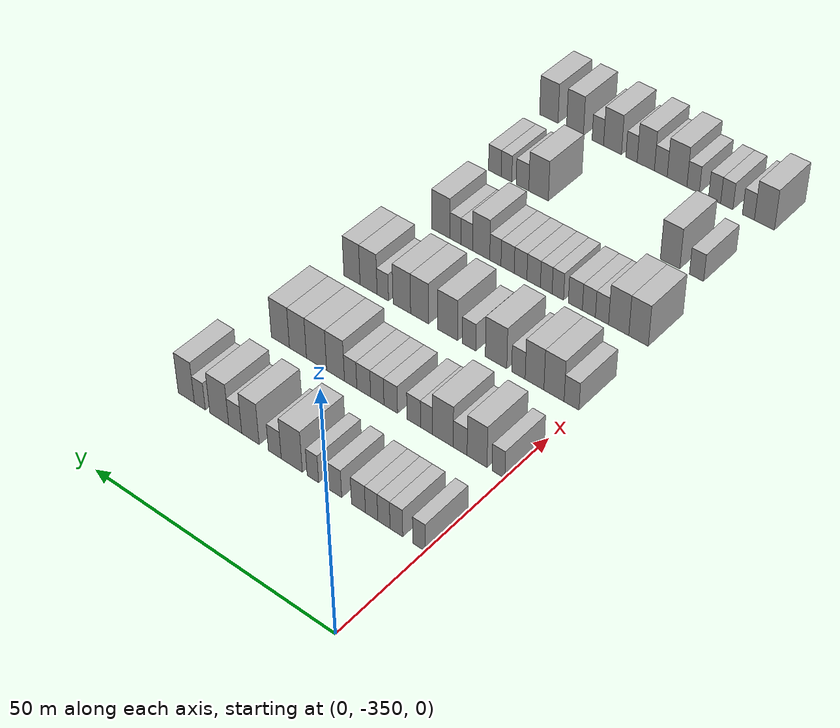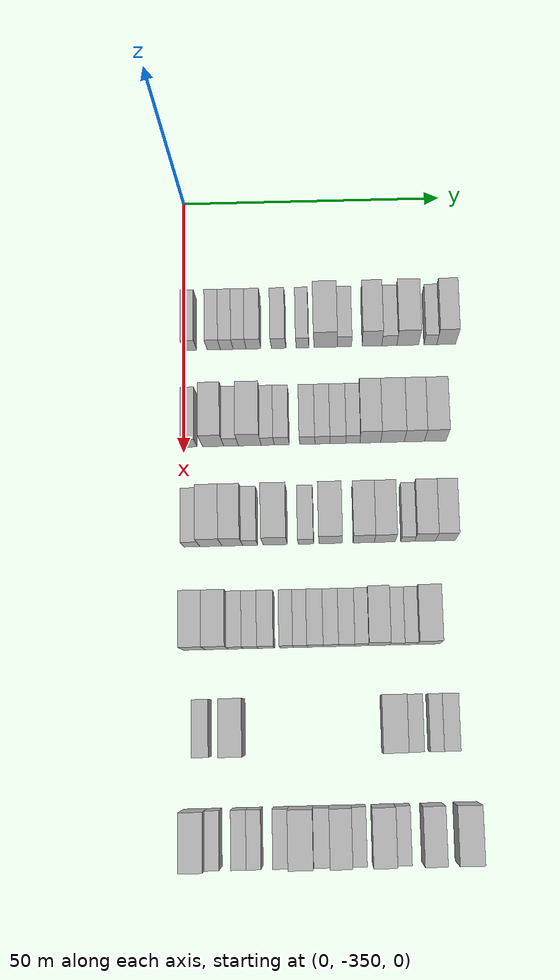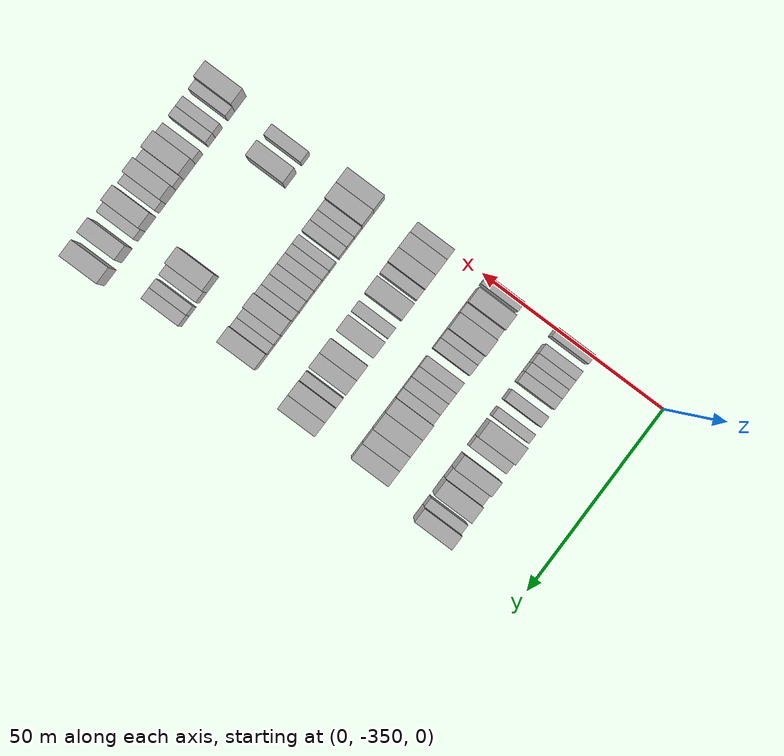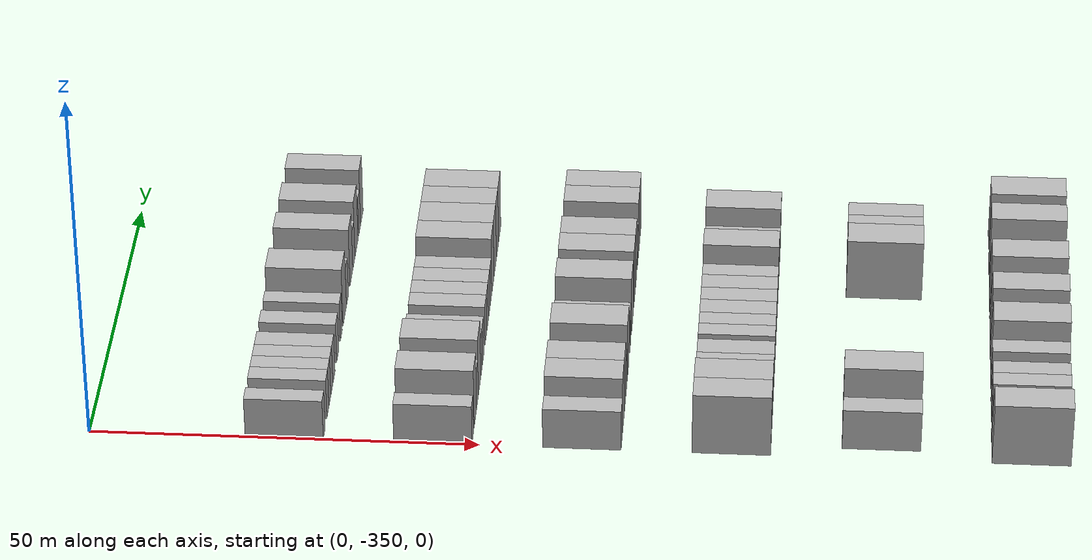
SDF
<sdf version="1.6">
 <world name="default">
  <model name="building_1">
   <static>1</static>
   <pose>25.0000 -348.7700 0 0.000000 0.000000 0.000000</pose>
   <link name="link">
    <pose>0 0 3.00 0 0 0</pose>
    <collision name="collision"><geometry><box><size>10.0000 2.4600 6.0000</size></box></geometry></collision>
    <visual name="visual">
     <cast_shadows>0</cast_shadows>
     <geometry><box><size>10.0000 2.4600 6.0000</size></box></geometry>
     <material>
      <script>
       <uri>model://HANNAS_wall/materials/scripts</uri>
       <uri>model://HANNAS_wall/materials/textures</uri>
       <name>vrc/HANNAS_wall</name>
      </script>
     </material>
    </visual>
   </link>
  </model>
  <model name="building_2">
   <static>1</static>
   <pose>25.0000 -344.2790 0 0.000000 0.000000 0.000000</pose>
   <link name="link">
    <pose>0 0 3.00 0 0 0</pose>
    <collision name="collision"><geometry><box><size>10.0000 2.5220 6.0000</size></box></geometry></collision>
    <visual name="visual">
     <cast_shadows>0</cast_shadows>
     <geometry><box><size>10.0000 2.5220 6.0000</size></box></geometry>
     <material>
      <script>
       <uri>model://HANNAS_wall/materials/scripts</uri>
       <uri>model://HANNAS_wall/materials/textures</uri>
       <name>vrc/HANNAS_wall</name>
      </script>
     </material>
    </visual>
   </link>
  </model>
  <model name="building_3">
   <static>1</static>
   <pose>25.0000 -341.7935 0 0.000000 0.000000 0.000000</pose>
   <link name="link">
    <pose>0 0 3.00 0 0 0</pose>
    <collision name="collision"><geometry><box><size>10.0000 2.4490 6.0000</size></box></geometry></collision>
    <visual name="visual">
     <cast_shadows>0</cast_shadows>
     <geometry><box><size>10.0000 2.4490 6.0000</size></box></geometry>
     <material>
      <script>
       <uri>model://HANNAS_wall/materials/scripts</uri>
       <uri>model://HANNAS_wall/materials/textures</uri>
       <name>vrc/HANNAS_wall</name>
      </script>
     </material>
    </visual>
   </link>
  </model>
  <model name="building_4">
   <static>1</static>
   <pose>25.0000 -339.3221 0 0.000000 0.000000 0.000000</pose>
   <link name="link">
    <pose>0 0 3.00 0 0 0</pose>
    <collision name="collision"><geometry><box><size>10.0000 2.4938 6.0000</size></box></geometry></collision>
    <visual name="visual">
     <cast_shadows>0</cast_shadows>
     <geometry><box><size>10.0000 2.4938 6.0000</size></box></geometry>
     <material>
      <script>
       <uri>model://HANNAS_wall/materials/scripts</uri>
       <uri>model://HANNAS_wall/materials/textures</uri>
       <name>vrc/HANNAS_wall</name>
      </script>
     </material>
    </visual>
   </link>
  </model>
  <model name="building_5">
   <static>1</static>
   <pose>25.0000 -336.6558 0 0.000000 0.000000 0.000000</pose>
   <link name="link">
    <pose>0 0 3.00 0 0 0</pose>
    <collision name="collision"><geometry><box><size>10.0000 2.8388 6.0000</size></box></geometry></collision>
    <visual name="visual">
     <cast_shadows>0</cast_shadows>
     <geometry><box><size>10.0000 2.8388 6.0000</size></box></geometry>
     <material>
      <script>
       <uri>model://HANNAS_wall/materials/scripts</uri>
       <uri>model://HANNAS_wall/materials/textures</uri>
       <name>vrc/HANNAS_wall</name>
      </script>
     </material>
    </visual>
   </link>
  </model>
  <model name="building_6">
   <static>1</static>
   <pose>25.0000 -331.8536 0 0.000000 0.000000 0.000000</pose>
   <link name="link">
    <pose>0 0 3.00 0 0 0</pose>
    <collision name="collision"><geometry><box><size>10.0000 2.7655 6.0000</size></box></geometry></collision>
    <visual name="visual">
     <cast_shadows>0</cast_shadows>
     <geometry><box><size>10.0000 2.7655 6.0000</size></box></geometry>
     <material>
      <script>
       <uri>model://HANNAS_wall/materials/scripts</uri>
       <uri>model://HANNAS_wall/materials/textures</uri>
       <name>vrc/HANNAS_wall</name>
      </script>
     </material>
    </visual>
   </link>
  </model>
  <model name="building_7">
   <static>1</static>
   <pose>25.0000 -327.2691 0 0.000000 0.000000 0.000000</pose>
   <link name="link">
    <pose>0 0 3.00 0 0 0</pose>
    <collision name="collision"><geometry><box><size>10.0000 2.4035 6.0000</size></box></geometry></collision>
    <visual name="visual">
     <cast_shadows>0</cast_shadows>
     <geometry><box><size>10.0000 2.4035 6.0000</size></box></geometry>
     <material>
      <script>
       <uri>model://HANNAS_wall/materials/scripts</uri>
       <uri>model://HANNAS_wall/materials/textures</uri>
       <name>vrc/HANNAS_wall</name>
      </script>
     </material>
    </visual>
   </link>
  </model>
  <model name="building_8">
   <static>1</static>
   <pose>25.0000 -322.8281 0 0.000000 0.000000 0.000000</pose>
   <link name="link">
    <pose>0 0 4.50 0 0 0</pose>
    <collision name="collision"><geometry><box><size>10.0000 4.4784 9.0000</size></box></geometry></collision>
    <visual name="visual">
     <cast_shadows>0</cast_shadows>
     <geometry><box><size>10.0000 4.4784 9.0000</size></box></geometry>
     <material>
      <script>
       <uri>model://HANNAS_wall/materials/scripts</uri>
       <uri>model://HANNAS_wall/materials/textures</uri>
       <name>vrc/HANNAS_wall</name>
      </script>
     </material>
    </visual>
   </link>
  </model>
  <model name="building_9">
   <static>1</static>
   <pose>25.0000 -319.2223 0 0.000000 0.000000 0.000000</pose>
   <link name="link">
    <pose>0 0 3.00 0 0 0</pose>
    <collision name="collision"><geometry><box><size>10.0000 2.7331 6.0000</size></box></geometry></collision>
    <visual name="visual">
     <cast_shadows>0</cast_shadows>
     <geometry><box><size>10.0000 2.7331 6.0000</size></box></geometry>
     <material>
      <script>
       <uri>model://HANNAS_wall/materials/scripts</uri>
       <uri>model://HANNAS_wall/materials/textures</uri>
       <name>vrc/HANNAS_wall</name>
      </script>
     </material>
    </visual>
   </link>
  </model>
  <model name="building_10">
   <static>1</static>
   <pose>25.0000 -313.9639 0 0.000000 0.000000 0.000000</pose>
   <link name="link">
    <pose>0 0 4.50 0 0 0</pose>
    <collision name="collision"><geometry><box><size>10.0000 3.7837 9.0000</size></box></geometry></collision>
    <visual name="visual">
     <cast_shadows>0</cast_shadows>
     <geometry><box><size>10.0000 3.7837 9.0000</size></box></geometry>
     <material>
      <script>
       <uri>model://HANNAS_wall/materials/scripts</uri>
       <uri>model://HANNAS_wall/materials/textures</uri>
       <name>vrc/HANNAS_wall</name>
      </script>
     </material>
    </visual>
   </link>
  </model>
  <model name="building_11">
   <static>1</static>
   <pose>25.0000 -310.6386 0 0.000000 0.000000 0.000000</pose>
   <link name="link">
    <pose>0 0 3.00 0 0 0</pose>
    <collision name="collision"><geometry><box><size>10.0000 2.8669 6.0000</size></box></geometry></collision>
    <visual name="visual">
     <cast_shadows>0</cast_shadows>
     <geometry><box><size>10.0000 2.8669 6.0000</size></box></geometry>
     <material>
      <script>
       <uri>model://HANNAS_wall/materials/scripts</uri>
       <uri>model://HANNAS_wall/materials/textures</uri>
       <name>vrc/HANNAS_wall</name>
      </script>
     </material>
    </visual>
   </link>
  </model>
  <model name="building_12">
   <static>1</static>
   <pose>25.0000 -307.1136 0 0.000000 0.000000 0.000000</pose>
   <link name="link">
    <pose>0 0 4.50 0 0 0</pose>
    <collision name="collision"><geometry><box><size>10.0000 4.1830 9.0000</size></box></geometry></collision>
    <visual name="visual">
     <cast_shadows>0</cast_shadows>
     <geometry><box><size>10.0000 4.1830 9.0000</size></box></geometry>
     <material>
      <script>
       <uri>model://HANNAS_wall/materials/scripts</uri>
       <uri>model://HANNAS_wall/materials/textures</uri>
       <name>vrc/HANNAS_wall</name>
      </script>
     </material>
    </visual>
   </link>
  </model>
  <model name="building_13">
   <static>1</static>
   <pose>25.0000 -302.7869 0 0.000000 0.000000 0.000000</pose>
   <link name="link">
    <pose>0 0 3.00 0 0 0</pose>
    <collision name="collision"><geometry><box><size>10.0000 2.4703 6.0000</size></box></geometry></collision>
    <visual name="visual">
     <cast_shadows>0</cast_shadows>
     <geometry><box><size>10.0000 2.4703 6.0000</size></box></geometry>
     <material>
      <script>
       <uri>model://HANNAS_wall/materials/scripts</uri>
       <uri>model://HANNAS_wall/materials/textures</uri>
       <name>vrc/HANNAS_wall</name>
      </script>
     </material>
    </visual>
   </link>
  </model>
  <model name="building_14">
   <static>1</static>
   <pose>25.0000 -299.7337 0 0.000000 0.000000 0.000000</pose>
   <link name="link">
    <pose>0 0 4.50 0 0 0</pose>
    <collision name="collision"><geometry><box><size>10.0000 3.6361 9.0000</size></box></geometry></collision>
    <visual name="visual">
     <cast_shadows>0</cast_shadows>
     <geometry><box><size>10.0000 3.6361 9.0000</size></box></geometry>
     <material>
      <script>
       <uri>model://HANNAS_wall/materials/scripts</uri>
       <uri>model://HANNAS_wall/materials/textures</uri>
       <name>vrc/HANNAS_wall</name>
      </script>
     </material>
    </visual>
   </link>
  </model>
  <model name="building_174">
   <static>1</static>
   <pose>44.0000 -348.7366 0 0.000000 0.000000 0.000000</pose>
   <link name="link">
    <pose>0 0 3.00 0 0 0</pose>
    <collision name="collision"><geometry><box><size>10.0000 2.5268 6.0000</size></box></geometry></collision>
    <visual name="visual">
     <cast_shadows>0</cast_shadows>
     <geometry><box><size>10.0000 2.5268 6.0000</size></box></geometry>
     <material>
      <script>
       <uri>model://HANNAS_wall/materials/scripts</uri>
       <uri>model://HANNAS_wall/materials/textures</uri>
       <name>vrc/HANNAS_wall</name>
      </script>
     </material>
    </visual>
   </link>
  </model>
  <model name="building_175">
   <static>1</static>
   <pose>44.0000 -344.4737 0 0.000000 0.000000 0.000000</pose>
   <link name="link">
    <pose>0 0 4.50 0 0 0</pose>
    <collision name="collision"><geometry><box><size>10.0000 3.9991 9.0000</size></box></geometry></collision>
    <visual name="visual">
     <cast_shadows>0</cast_shadows>
     <geometry><box><size>10.0000 3.9991 9.0000</size></box></geometry>
     <material>
      <script>
       <uri>model://HANNAS_wall/materials/scripts</uri>
       <uri>model://HANNAS_wall/materials/textures</uri>
       <name>vrc/HANNAS_wall</name>
      </script>
     </material>
    </visual>
   </link>
  </model>
  <model name="building_176">
   <static>1</static>
   <pose>44.0000 -341.0941 0 0.000000 0.000000 0.000000</pose>
   <link name="link">
    <pose>0 0 3.00 0 0 0</pose>
    <collision name="collision"><geometry><box><size>10.0000 2.7602 6.0000</size></box></geometry></collision>
    <visual name="visual">
     <cast_shadows>0</cast_shadows>
     <geometry><box><size>10.0000 2.7602 6.0000</size></box></geometry>
     <material>
      <script>
       <uri>model://HANNAS_wall/materials/scripts</uri>
       <uri>model://HANNAS_wall/materials/textures</uri>
       <name>vrc/HANNAS_wall</name>
      </script>
     </material>
    </visual>
   </link>
  </model>
  <model name="building_177">
   <static>1</static>
   <pose>44.0000 -337.5719 0 0.000000 0.000000 0.000000</pose>
   <link name="link">
    <pose>0 0 4.50 0 0 0</pose>
    <collision name="collision"><geometry><box><size>10.0000 4.2843 9.0000</size></box></geometry></collision>
    <visual name="visual">
     <cast_shadows>0</cast_shadows>
     <geometry><box><size>10.0000 4.2843 9.0000</size></box></geometry>
     <material>
      <script>
       <uri>model://HANNAS_wall/materials/scripts</uri>
       <uri>model://HANNAS_wall/materials/textures</uri>
       <name>vrc/HANNAS_wall</name>
      </script>
     </material>
    </visual>
   </link>
  </model>
  <model name="building_178">
   <static>1</static>
   <pose>44.0000 -334.1991 0 0.000000 0.000000 0.000000</pose>
   <link name="link">
    <pose>0 0 3.00 0 0 0</pose>
    <collision name="collision"><geometry><box><size>10.0000 2.4613 6.0000</size></box></geometry></collision>
    <visual name="visual">
     <cast_shadows>0</cast_shadows>
     <geometry><box><size>10.0000 2.4613 6.0000</size></box></geometry>
     <material>
      <script>
       <uri>model://HANNAS_wall/materials/scripts</uri>
       <uri>model://HANNAS_wall/materials/textures</uri>
       <name>vrc/HANNAS_wall</name>
      </script>
     </material>
    </visual>
   </link>
  </model>
  <model name="building_179">
   <static>1</static>
   <pose>44.0000 -331.5585 0 0.000000 0.000000 0.000000</pose>
   <link name="link">
    <pose>0 0 3.00 0 0 0</pose>
    <collision name="collision"><geometry><box><size>10.0000 2.8199 6.0000</size></box></geometry></collision>
    <visual name="visual">
     <cast_shadows>0</cast_shadows>
     <geometry><box><size>10.0000 2.8199 6.0000</size></box></geometry>
     <material>
      <script>
       <uri>model://HANNAS_wall/materials/scripts</uri>
       <uri>model://HANNAS_wall/materials/textures</uri>
       <name>vrc/HANNAS_wall</name>
      </script>
     </material>
    </visual>
   </link>
  </model>
  <model name="building_180">
   <static>1</static>
   <pose>44.0000 -326.7147 0 0.000000 0.000000 0.000000</pose>
   <link name="link">
    <pose>0 0 3.00 0 0 0</pose>
    <collision name="collision"><geometry><box><size>10.0000 2.8676 6.0000</size></box></geometry></collision>
    <visual name="visual">
     <cast_shadows>0</cast_shadows>
     <geometry><box><size>10.0000 2.8676 6.0000</size></box></geometry>
     <material>
      <script>
       <uri>model://HANNAS_wall/materials/scripts</uri>
       <uri>model://HANNAS_wall/materials/textures</uri>
       <name>vrc/HANNAS_wall</name>
      </script>
     </material>
    </visual>
   </link>
  </model>
  <model name="building_181">
   <static>1</static>
   <pose>44.0000 -323.8691 0 0.000000 0.000000 0.000000</pose>
   <link name="link">
    <pose>0 0 3.00 0 0 0</pose>
    <collision name="collision"><geometry><box><size>10.0000 2.8238 6.0000</size></box></geometry></collision>
    <visual name="visual">
     <cast_shadows>0</cast_shadows>
     <geometry><box><size>10.0000 2.8238 6.0000</size></box></geometry>
     <material>
      <script>
       <uri>model://HANNAS_wall/materials/scripts</uri>
       <uri>model://HANNAS_wall/materials/textures</uri>
       <name>vrc/HANNAS_wall</name>
      </script>
     </material>
    </visual>
   </link>
  </model>
  <model name="building_182">
   <static>1</static>
   <pose>44.0000 -320.9661 0 0.000000 0.000000 0.000000</pose>
   <link name="link">
    <pose>0 0 3.00 0 0 0</pose>
    <collision name="collision"><geometry><box><size>10.0000 2.9821 6.0000</size></box></geometry></collision>
    <visual name="visual">
     <cast_shadows>0</cast_shadows>
     <geometry><box><size>10.0000 2.9821 6.0000</size></box></geometry>
     <material>
      <script>
       <uri>model://HANNAS_wall/materials/scripts</uri>
       <uri>model://HANNAS_wall/materials/textures</uri>
       <name>vrc/HANNAS_wall</name>
      </script>
     </material>
    </visual>
   </link>
  </model>
  <model name="building_183">
   <static>1</static>
   <pose>44.0000 -318.1455 0 0.000000 0.000000 0.000000</pose>
   <link name="link">
    <pose>0 0 3.00 0 0 0</pose>
    <collision name="collision"><geometry><box><size>10.0000 2.6590 6.0000</size></box></geometry></collision>
    <visual name="visual">
     <cast_shadows>0</cast_shadows>
     <geometry><box><size>10.0000 2.6590 6.0000</size></box></geometry>
     <material>
      <script>
       <uri>model://HANNAS_wall/materials/scripts</uri>
       <uri>model://HANNAS_wall/materials/textures</uri>
       <name>vrc/HANNAS_wall</name>
      </script>
     </material>
    </visual>
   </link>
  </model>
  <model name="building_184">
   <static>1</static>
   <pose>44.0000 -314.8631 0 0.000000 0.000000 0.000000</pose>
   <link name="link">
    <pose>0 0 4.50 0 0 0</pose>
    <collision name="collision"><geometry><box><size>10.0000 3.9060 9.0000</size></box></geometry></collision>
    <visual name="visual">
     <cast_shadows>0</cast_shadows>
     <geometry><box><size>10.0000 3.9060 9.0000</size></box></geometry>
     <material>
      <script>
       <uri>model://HANNAS_wall/materials/scripts</uri>
       <uri>model://HANNAS_wall/materials/textures</uri>
       <name>vrc/HANNAS_wall</name>
      </script>
     </material>
    </visual>
   </link>
  </model>
  <model name="building_185">
   <static>1</static>
   <pose>44.0000 -310.6828 0 0.000000 0.000000 0.000000</pose>
   <link name="link">
    <pose>0 0 4.50 0 0 0</pose>
    <collision name="collision"><geometry><box><size>10.0000 4.4546 9.0000</size></box></geometry></collision>
    <visual name="visual">
     <cast_shadows>0</cast_shadows>
     <geometry><box><size>10.0000 4.4546 9.0000</size></box></geometry>
     <material>
      <script>
       <uri>model://HANNAS_wall/materials/scripts</uri>
       <uri>model://HANNAS_wall/materials/textures</uri>
       <name>vrc/HANNAS_wall</name>
      </script>
     </material>
    </visual>
   </link>
  </model>
  <model name="building_186">
   <static>1</static>
   <pose>44.0000 -306.5533 0 0.000000 0.000000 0.000000</pose>
   <link name="link">
    <pose>0 0 4.50 0 0 0</pose>
    <collision name="collision"><geometry><box><size>10.0000 3.8044 9.0000</size></box></geometry></collision>
    <visual name="visual">
     <cast_shadows>0</cast_shadows>
     <geometry><box><size>10.0000 3.8044 9.0000</size></box></geometry>
     <material>
      <script>
       <uri>model://HANNAS_wall/materials/scripts</uri>
       <uri>model://HANNAS_wall/materials/textures</uri>
       <name>vrc/HANNAS_wall</name>
      </script>
     </material>
    </visual>
   </link>
  </model>
  <model name="building_187">
   <static>1</static>
   <pose>44.0000 -302.6117 0 0.000000 0.000000 0.000000</pose>
   <link name="link">
    <pose>0 0 4.50 0 0 0</pose>
    <collision name="collision"><geometry><box><size>10.0000 4.0787 9.0000</size></box></geometry></collision>
    <visual name="visual">
     <cast_shadows>0</cast_shadows>
     <geometry><box><size>10.0000 4.0787 9.0000</size></box></geometry>
     <material>
      <script>
       <uri>model://HANNAS_wall/materials/scripts</uri>
       <uri>model://HANNAS_wall/materials/textures</uri>
       <name>vrc/HANNAS_wall</name>
      </script>
     </material>
    </visual>
   </link>
  </model>
  <model name="building_349">
   <static>1</static>
   <pose>63.0000 -348.5060 0 0.000000 0.000000 0.000000</pose>
   <link name="link">
    <pose>0 0 3.00 0 0 0</pose>
    <collision name="collision"><geometry><box><size>10.0000 2.9880 6.0000</size></box></geometry></collision>
    <visual name="visual">
     <cast_shadows>0</cast_shadows>
     <geometry><box><size>10.0000 2.9880 6.0000</size></box></geometry>
     <material>
      <script>
       <uri>model://HANNAS_wall/materials/scripts</uri>
       <uri>model://HANNAS_wall/materials/textures</uri>
       <name>vrc/HANNAS_wall</name>
      </script>
     </material>
    </visual>
   </link>
  </model>
  <model name="building_350">
   <static>1</static>
   <pose>63.0000 -344.9649 0 0.000000 0.000000 0.000000</pose>
   <link name="link">
    <pose>0 0 4.50 0 0 0</pose>
    <collision name="collision"><geometry><box><size>10.0000 4.0942 9.0000</size></box></geometry></collision>
    <visual name="visual">
     <cast_shadows>0</cast_shadows>
     <geometry><box><size>10.0000 4.0942 9.0000</size></box></geometry>
     <material>
      <script>
       <uri>model://HANNAS_wall/materials/scripts</uri>
       <uri>model://HANNAS_wall/materials/textures</uri>
       <name>vrc/HANNAS_wall</name>
      </script>
     </material>
    </visual>
   </link>
  </model>
  <model name="building_351">
   <static>1</static>
   <pose>63.0000 -340.9973 0 0.000000 0.000000 0.000000</pose>
   <link name="link">
    <pose>0 0 4.50 0 0 0</pose>
    <collision name="collision"><geometry><box><size>10.0000 3.8410 9.0000</size></box></geometry></collision>
    <visual name="visual">
     <cast_shadows>0</cast_shadows>
     <geometry><box><size>10.0000 3.8410 9.0000</size></box></geometry>
     <material>
      <script>
       <uri>model://HANNAS_wall/materials/scripts</uri>
       <uri>model://HANNAS_wall/materials/textures</uri>
       <name>vrc/HANNAS_wall</name>
      </script>
     </material>
    </visual>
   </link>
  </model>
  <model name="building_352">
   <static>1</static>
   <pose>63.0000 -337.6802 0 0.000000 0.000000 0.000000</pose>
   <link name="link">
    <pose>0 0 3.00 0 0 0</pose>
    <collision name="collision"><geometry><box><size>10.0000 2.7931 6.0000</size></box></geometry></collision>
    <visual name="visual">
     <cast_shadows>0</cast_shadows>
     <geometry><box><size>10.0000 2.7931 6.0000</size></box></geometry>
     <material>
      <script>
       <uri>model://HANNAS_wall/materials/scripts</uri>
       <uri>model://HANNAS_wall/materials/textures</uri>
       <name>vrc/HANNAS_wall</name>
      </script>
     </material>
    </visual>
   </link>
  </model>
  <model name="building_353">
   <static>1</static>
   <pose>63.0000 -333.0357 0 0.000000 0.000000 0.000000</pose>
   <link name="link">
    <pose>0 0 4.50 0 0 0</pose>
    <collision name="collision"><geometry><box><size>10.0000 4.4959 9.0000</size></box></geometry></collision>
    <visual name="visual">
     <cast_shadows>0</cast_shadows>
     <geometry><box><size>10.0000 4.4959 9.0000</size></box></geometry>
     <material>
      <script>
       <uri>model://HANNAS_wall/materials/scripts</uri>
       <uri>model://HANNAS_wall/materials/textures</uri>
       <name>vrc/HANNAS_wall</name>
      </script>
     </material>
    </visual>
   </link>
  </model>
  <model name="building_354">
   <static>1</static>
   <pose>63.0000 -327.3526 0 0.000000 0.000000 0.000000</pose>
   <link name="link">
    <pose>0 0 3.00 0 0 0</pose>
    <collision name="collision"><geometry><box><size>10.0000 2.8704 6.0000</size></box></geometry></collision>
    <visual name="visual">
     <cast_shadows>0</cast_shadows>
     <geometry><box><size>10.0000 2.8704 6.0000</size></box></geometry>
     <material>
      <script>
       <uri>model://HANNAS_wall/materials/scripts</uri>
       <uri>model://HANNAS_wall/materials/textures</uri>
       <name>vrc/HANNAS_wall</name>
      </script>
     </material>
    </visual>
   </link>
  </model>
  <model name="building_355">
   <static>1</static>
   <pose>63.0000 -322.7713 0 0.000000 0.000000 0.000000</pose>
   <link name="link">
    <pose>0 0 4.50 0 0 0</pose>
    <collision name="collision"><geometry><box><size>10.0000 4.2920 9.0000</size></box></geometry></collision>
    <visual name="visual">
     <cast_shadows>0</cast_shadows>
     <geometry><box><size>10.0000 4.2920 9.0000</size></box></geometry>
     <material>
      <script>
       <uri>model://HANNAS_wall/materials/scripts</uri>
       <uri>model://HANNAS_wall/materials/textures</uri>
       <name>vrc/HANNAS_wall</name>
      </script>
     </material>
    </visual>
   </link>
  </model>
  <model name="building_356">
   <static>1</static>
   <pose>63.0000 -316.6550 0 0.000000 0.000000 0.000000</pose>
   <link name="link">
    <pose>0 0 4.50 0 0 0</pose>
    <collision name="collision"><geometry><box><size>10.0000 3.9406 9.0000</size></box></geometry></collision>
    <visual name="visual">
     <cast_shadows>0</cast_shadows>
     <geometry><box><size>10.0000 3.9406 9.0000</size></box></geometry>
     <material>
      <script>
       <uri>model://HANNAS_wall/materials/scripts</uri>
       <uri>model://HANNAS_wall/materials/textures</uri>
       <name>vrc/HANNAS_wall</name>
      </script>
     </material>
    </visual>
   </link>
  </model>
  <model name="building_357">
   <static>1</static>
   <pose>63.0000 -312.7379 0 0.000000 0.000000 0.000000</pose>
   <link name="link">
    <pose>0 0 4.50 0 0 0</pose>
    <collision name="collision"><geometry><box><size>10.0000 3.8937 9.0000</size></box></geometry></collision>
    <visual name="visual">
     <cast_shadows>0</cast_shadows>
     <geometry><box><size>10.0000 3.8937 9.0000</size></box></geometry>
     <material>
      <script>
       <uri>model://HANNAS_wall/materials/scripts</uri>
       <uri>model://HANNAS_wall/materials/textures</uri>
       <name>vrc/HANNAS_wall</name>
      </script>
     </material>
    </visual>
   </link>
  </model>
  <model name="building_358">
   <static>1</static>
   <pose>63.0000 -308.5095 0 0.000000 0.000000 0.000000</pose>
   <link name="link">
    <pose>0 0 3.00 0 0 0</pose>
    <collision name="collision"><geometry><box><size>10.0000 2.5632 6.0000</size></box></geometry></collision>
    <visual name="visual">
     <cast_shadows>0</cast_shadows>
     <geometry><box><size>10.0000 2.5632 6.0000</size></box></geometry>
     <material>
      <script>
       <uri>model://HANNAS_wall/materials/scripts</uri>
       <uri>model://HANNAS_wall/materials/textures</uri>
       <name>vrc/HANNAS_wall</name>
      </script>
     </material>
    </visual>
   </link>
  </model>
  <model name="building_359">
   <static>1</static>
   <pose>63.0000 -305.3018 0 0.000000 0.000000 0.000000</pose>
   <link name="link">
    <pose>0 0 4.50 0 0 0</pose>
    <collision name="collision"><geometry><box><size>10.0000 3.8521 9.0000</size></box></geometry></collision>
    <visual name="visual">
     <cast_shadows>0</cast_shadows>
     <geometry><box><size>10.0000 3.8521 9.0000</size></box></geometry>
     <material>
      <script>
       <uri>model://HANNAS_wall/materials/scripts</uri>
       <uri>model://HANNAS_wall/materials/textures</uri>
       <name>vrc/HANNAS_wall</name>
      </script>
     </material>
    </visual>
   </link>
  </model>
  <model name="building_360">
   <static>1</static>
   <pose>63.0000 -301.5309 0 0.000000 0.000000 0.000000</pose>
   <link name="link">
    <pose>0 0 4.50 0 0 0</pose>
    <collision name="collision"><geometry><box><size>10.0000 3.6897 9.0000</size></box></geometry></collision>
    <visual name="visual">
     <cast_shadows>0</cast_shadows>
     <geometry><box><size>10.0000 3.6897 9.0000</size></box></geometry>
     <material>
      <script>
       <uri>model://HANNAS_wall/materials/scripts</uri>
       <uri>model://HANNAS_wall/materials/textures</uri>
       <name>vrc/HANNAS_wall</name>
      </script>
     </material>
    </visual>
   </link>
  </model>
  <model name="building_522">
   <static>1</static>
   <pose>82.0000 -348.0098 0 0.000000 0.000000 0.000000</pose>
   <link name="link">
    <pose>0 0 4.50 0 0 0</pose>
    <collision name="collision"><geometry><box><size>10.0000 3.9804 9.0000</size></box></geometry></collision>
    <visual name="visual">
     <cast_shadows>0</cast_shadows>
     <geometry><box><size>10.0000 3.9804 9.0000</size></box></geometry>
     <material>
      <script>
       <uri>model://HANNAS_wall/materials/scripts</uri>
       <uri>model://HANNAS_wall/materials/textures</uri>
       <name>vrc/HANNAS_wall</name>
      </script>
     </material>
    </visual>
   </link>
  </model>
  <model name="building_523">
   <static>1</static>
   <pose>82.0000 -343.9373 0 0.000000 0.000000 0.000000</pose>
   <link name="link">
    <pose>0 0 4.50 0 0 0</pose>
    <collision name="collision"><geometry><box><size>10.0000 4.1646 9.0000</size></box></geometry></collision>
    <visual name="visual">
     <cast_shadows>0</cast_shadows>
     <geometry><box><size>10.0000 4.1646 9.0000</size></box></geometry>
     <material>
      <script>
       <uri>model://HANNAS_wall/materials/scripts</uri>
       <uri>model://HANNAS_wall/materials/textures</uri>
       <name>vrc/HANNAS_wall</name>
      </script>
     </material>
    </visual>
   </link>
  </model>
  <model name="building_524">
   <static>1</static>
   <pose>82.0000 -340.4889 0 0.000000 0.000000 0.000000</pose>
   <link name="link">
    <pose>0 0 3.00 0 0 0</pose>
    <collision name="collision"><geometry><box><size>10.0000 2.7324 6.0000</size></box></geometry></collision>
    <visual name="visual">
     <cast_shadows>0</cast_shadows>
     <geometry><box><size>10.0000 2.7324 6.0000</size></box></geometry>
     <material>
      <script>
       <uri>model://HANNAS_wall/materials/scripts</uri>
       <uri>model://HANNAS_wall/materials/textures</uri>
       <name>vrc/HANNAS_wall</name>
      </script>
     </material>
    </visual>
   </link>
  </model>
  <model name="building_525">
   <static>1</static>
   <pose>82.0000 -337.7583 0 0.000000 0.000000 0.000000</pose>
   <link name="link">
    <pose>0 0 3.00 0 0 0</pose>
    <collision name="collision"><geometry><box><size>10.0000 2.7288 6.0000</size></box></geometry></collision>
    <visual name="visual">
     <cast_shadows>0</cast_shadows>
     <geometry><box><size>10.0000 2.7288 6.0000</size></box></geometry>
     <material>
      <script>
       <uri>model://HANNAS_wall/materials/scripts</uri>
       <uri>model://HANNAS_wall/materials/textures</uri>
       <name>vrc/HANNAS_wall</name>
      </script>
     </material>
    </visual>
   </link>
  </model>
  <model name="building_526">
   <static>1</static>
   <pose>82.0000 -334.9170 0 0.000000 0.000000 0.000000</pose>
   <link name="link">
    <pose>0 0 3.00 0 0 0</pose>
    <collision name="collision"><geometry><box><size>10.0000 2.9537 6.0000</size></box></geometry></collision>
    <visual name="visual">
     <cast_shadows>0</cast_shadows>
     <geometry><box><size>10.0000 2.9537 6.0000</size></box></geometry>
     <material>
      <script>
       <uri>model://HANNAS_wall/materials/scripts</uri>
       <uri>model://HANNAS_wall/materials/textures</uri>
       <name>vrc/HANNAS_wall</name>
      </script>
     </material>
    </visual>
   </link>
  </model>
  <model name="building_527">
   <static>1</static>
   <pose>82.0000 -331.2116 0 0.000000 0.000000 0.000000</pose>
   <link name="link">
    <pose>0 0 3.00 0 0 0</pose>
    <collision name="collision"><geometry><box><size>10.0000 2.4570 6.0000</size></box></geometry></collision>
    <visual name="visual">
     <cast_shadows>0</cast_shadows>
     <geometry><box><size>10.0000 2.4570 6.0000</size></box></geometry>
     <material>
      <script>
       <uri>model://HANNAS_wall/materials/scripts</uri>
       <uri>model://HANNAS_wall/materials/textures</uri>
       <name>vrc/HANNAS_wall</name>
      </script>
     </material>
    </visual>
   </link>
  </model>
  <model name="building_528">
   <static>1</static>
   <pose>82.0000 -328.7298 0 0.000000 0.000000 0.000000</pose>
   <link name="link">
    <pose>0 0 3.00 0 0 0</pose>
    <collision name="collision"><geometry><box><size>10.0000 2.5067 6.0000</size></box></geometry></collision>
    <visual name="visual">
     <cast_shadows>0</cast_shadows>
     <geometry><box><size>10.0000 2.5067 6.0000</size></box></geometry>
     <material>
      <script>
       <uri>model://HANNAS_wall/materials/scripts</uri>
       <uri>model://HANNAS_wall/materials/textures</uri>
       <name>vrc/HANNAS_wall</name>
      </script>
     </material>
    </visual>
   </link>
  </model>
  <model name="building_529">
   <static>1</static>
   <pose>82.0000 -326.0225 0 0.000000 0.000000 0.000000</pose>
   <link name="link">
    <pose>0 0 3.00 0 0 0</pose>
    <collision name="collision"><geometry><box><size>10.0000 2.9079 6.0000</size></box></geometry></collision>
    <visual name="visual">
     <cast_shadows>0</cast_shadows>
     <geometry><box><size>10.0000 2.9079 6.0000</size></box></geometry>
     <material>
      <script>
       <uri>model://HANNAS_wall/materials/scripts</uri>
       <uri>model://HANNAS_wall/materials/textures</uri>
       <name>vrc/HANNAS_wall</name>
      </script>
     </material>
    </visual>
   </link>
  </model>
  <model name="building_530">
   <static>1</static>
   <pose>82.0000 -323.1890 0 0.000000 0.000000 0.000000</pose>
   <link name="link">
    <pose>0 0 3.00 0 0 0</pose>
    <collision name="collision"><geometry><box><size>10.0000 2.7590 6.0000</size></box></geometry></collision>
    <visual name="visual">
     <cast_shadows>0</cast_shadows>
     <geometry><box><size>10.0000 2.7590 6.0000</size></box></geometry>
     <material>
      <script>
       <uri>model://HANNAS_wall/materials/scripts</uri>
       <uri>model://HANNAS_wall/materials/textures</uri>
       <name>vrc/HANNAS_wall</name>
      </script>
     </material>
    </visual>
   </link>
  </model>
  <model name="building_531">
   <static>1</static>
   <pose>82.0000 -320.3609 0 0.000000 0.000000 0.000000</pose>
   <link name="link">
    <pose>0 0 3.00 0 0 0</pose>
    <collision name="collision"><geometry><box><size>10.0000 2.8973 6.0000</size></box></geometry></collision>
    <visual name="visual">
     <cast_shadows>0</cast_shadows>
     <geometry><box><size>10.0000 2.8973 6.0000</size></box></geometry>
     <material>
      <script>
       <uri>model://HANNAS_wall/materials/scripts</uri>
       <uri>model://HANNAS_wall/materials/textures</uri>
       <name>vrc/HANNAS_wall</name>
      </script>
     </material>
    </visual>
   </link>
  </model>
  <model name="building_532">
   <static>1</static>
   <pose>82.0000 -317.6761 0 0.000000 0.000000 0.000000</pose>
   <link name="link">
    <pose>0 0 3.00 0 0 0</pose>
    <collision name="collision"><geometry><box><size>10.0000 2.4722 6.0000</size></box></geometry></collision>
    <visual name="visual">
     <cast_shadows>0</cast_shadows>
     <geometry><box><size>10.0000 2.4722 6.0000</size></box></geometry>
     <material>
      <script>
       <uri>model://HANNAS_wall/materials/scripts</uri>
       <uri>model://HANNAS_wall/materials/textures</uri>
       <name>vrc/HANNAS_wall</name>
      </script>
     </material>
    </visual>
   </link>
  </model>
  <model name="building_533">
   <static>1</static>
   <pose>82.0000 -314.5107 0 0.000000 0.000000 0.000000</pose>
   <link name="link">
    <pose>0 0 4.50 0 0 0</pose>
    <collision name="collision"><geometry><box><size>10.0000 3.8586 9.0000</size></box></geometry></collision>
    <visual name="visual">
     <cast_shadows>0</cast_shadows>
     <geometry><box><size>10.0000 3.8586 9.0000</size></box></geometry>
     <material>
      <script>
       <uri>model://HANNAS_wall/materials/scripts</uri>
       <uri>model://HANNAS_wall/materials/textures</uri>
       <name>vrc/HANNAS_wall</name>
      </script>
     </material>
    </visual>
   </link>
  </model>
  <model name="building_534">
   <static>1</static>
   <pose>82.0000 -311.2849 0 0.000000 0.000000 0.000000</pose>
   <link name="link">
    <pose>0 0 3.00 0 0 0</pose>
    <collision name="collision"><geometry><box><size>10.0000 2.5931 6.0000</size></box></geometry></collision>
    <visual name="visual">
     <cast_shadows>0</cast_shadows>
     <geometry><box><size>10.0000 2.5931 6.0000</size></box></geometry>
     <material>
      <script>
       <uri>model://HANNAS_wall/materials/scripts</uri>
       <uri>model://HANNAS_wall/materials/textures</uri>
       <name>vrc/HANNAS_wall</name>
      </script>
     </material>
    </visual>
   </link>
  </model>
  <model name="building_535">
   <static>1</static>
   <pose>82.0000 -308.7599 0 0.000000 0.000000 0.000000</pose>
   <link name="link">
    <pose>0 0 3.00 0 0 0</pose>
    <collision name="collision"><geometry><box><size>10.0000 2.4569 6.0000</size></box></geometry></collision>
    <visual name="visual">
     <cast_shadows>0</cast_shadows>
     <geometry><box><size>10.0000 2.4569 6.0000</size></box></geometry>
     <material>
      <script>
       <uri>model://HANNAS_wall/materials/scripts</uri>
       <uri>model://HANNAS_wall/materials/textures</uri>
       <name>vrc/HANNAS_wall</name>
      </script>
     </material>
    </visual>
   </link>
  </model>
  <model name="building_536">
   <static>1</static>
   <pose>82.0000 -305.4436 0 0.000000 0.000000 0.000000</pose>
   <link name="link">
    <pose>0 0 4.50 0 0 0</pose>
    <collision name="collision"><geometry><box><size>10.0000 4.1756 9.0000</size></box></geometry></collision>
    <visual name="visual">
     <cast_shadows>0</cast_shadows>
     <geometry><box><size>10.0000 4.1756 9.0000</size></box></geometry>
     <material>
      <script>
       <uri>model://HANNAS_wall/materials/scripts</uri>
       <uri>model://HANNAS_wall/materials/textures</uri>
       <name>vrc/HANNAS_wall</name>
      </script>
     </material>
    </visual>
   </link>
  </model>
  <model name="building_699">
   <static>1</static>
   <pose>101.0000 -346.5282 0 0.000000 0.000000 0.000000</pose>
   <link name="link">
    <pose>0 0 3.00 0 0 0</pose>
    <collision name="collision"><geometry><box><size>10.0000 2.9435 6.0000</size></box></geometry></collision>
    <visual name="visual">
     <cast_shadows>0</cast_shadows>
     <geometry><box><size>10.0000 2.9435 6.0000</size></box></geometry>
     <material>
      <script>
       <uri>model://HANNAS_wall/materials/scripts</uri>
       <uri>model://HANNAS_wall/materials/textures</uri>
       <name>vrc/HANNAS_wall</name>
      </script>
     </material>
    </visual>
   </link>
  </model>
  <model name="building_700">
   <static>1</static>
   <pose>101.0000 -341.0135 0 0.000000 0.000000 0.000000</pose>
   <link name="link">
    <pose>0 0 4.50 0 0 0</pose>
    <collision name="collision"><geometry><box><size>10.0000 4.0860 9.0000</size></box></geometry></collision>
    <visual name="visual">
     <cast_shadows>0</cast_shadows>
     <geometry><box><size>10.0000 4.0860 9.0000</size></box></geometry>
     <material>
      <script>
       <uri>model://HANNAS_wall/materials/scripts</uri>
       <uri>model://HANNAS_wall/materials/textures</uri>
       <name>vrc/HANNAS_wall</name>
      </script>
     </material>
    </visual>
   </link>
  </model>
  <model name="building_701">
   <static>1</static>
   <pose>101.0000 -312.3452 0 0.000000 0.000000 0.000000</pose>
   <link name="link">
    <pose>0 0 4.50 0 0 0</pose>
    <collision name="collision"><geometry><box><size>10.0000 4.4168 9.0000</size></box></geometry></collision>
    <visual name="visual">
     <cast_shadows>0</cast_shadows>
     <geometry><box><size>10.0000 4.4168 9.0000</size></box></geometry>
     <material>
      <script>
       <uri>model://HANNAS_wall/materials/scripts</uri>
       <uri>model://HANNAS_wall/materials/textures</uri>
       <name>vrc/HANNAS_wall</name>
      </script>
     </material>
    </visual>
   </link>
  </model>
  <model name="building_702">
   <static>1</static>
   <pose>101.0000 -308.6917 0 0.000000 0.000000 0.000000</pose>
   <link name="link">
    <pose>0 0 3.00 0 0 0</pose>
    <collision name="collision"><geometry><box><size>10.0000 2.8902 6.0000</size></box></geometry></collision>
    <visual name="visual">
     <cast_shadows>0</cast_shadows>
     <geometry><box><size>10.0000 2.8902 6.0000</size></box></geometry>
     <material>
      <script>
       <uri>model://HANNAS_wall/materials/scripts</uri>
       <uri>model://HANNAS_wall/materials/textures</uri>
       <name>vrc/HANNAS_wall</name>
      </script>
     </material>
    </visual>
   </link>
  </model>
  <model name="building_703">
   <static>1</static>
   <pose>101.0000 -305.0167 0 0.000000 0.000000 0.000000</pose>
   <link name="link">
    <pose>0 0 3.00 0 0 0</pose>
    <collision name="collision"><geometry><box><size>10.0000 2.4597 6.0000</size></box></geometry></collision>
    <visual name="visual">
     <cast_shadows>0</cast_shadows>
     <geometry><box><size>10.0000 2.4597 6.0000</size></box></geometry>
     <material>
      <script>
       <uri>model://HANNAS_wall/materials/scripts</uri>
       <uri>model://HANNAS_wall/materials/textures</uri>
       <name>vrc/HANNAS_wall</name>
      </script>
     </material>
    </visual>
   </link>
  </model>
  <model name="building_704">
   <static>1</static>
   <pose>101.0000 -302.3302 0 0.000000 0.000000 0.000000</pose>
   <link name="link">
    <pose>0 0 3.00 0 0 0</pose>
    <collision name="collision"><geometry><box><size>10.0000 2.9133 6.0000</size></box></geometry></collision>
    <visual name="visual">
     <cast_shadows>0</cast_shadows>
     <geometry><box><size>10.0000 2.9133 6.0000</size></box></geometry>
     <material>
      <script>
       <uri>model://HANNAS_wall/materials/scripts</uri>
       <uri>model://HANNAS_wall/materials/textures</uri>
       <name>vrc/HANNAS_wall</name>
      </script>
     </material>
    </visual>
   </link>
  </model>
  <model name="building_875">
   <static>1</static>
   <pose>120.0000 -347.9019 0 0.000000 0.000000 0.000000</pose>
   <link name="link">
    <pose>0 0 4.50 0 0 0</pose>
    <collision name="collision"><geometry><box><size>10.0000 4.1962 9.0000</size></box></geometry></collision>
    <visual name="visual">
     <cast_shadows>0</cast_shadows>
     <geometry><box><size>10.0000 4.1962 9.0000</size></box></geometry>
     <material>
      <script>
       <uri>model://HANNAS_wall/materials/scripts</uri>
       <uri>model://HANNAS_wall/materials/textures</uri>
       <name>vrc/HANNAS_wall</name>
      </script>
     </material>
    </visual>
   </link>
  </model>
  <model name="building_876">
   <static>1</static>
   <pose>120.0000 -344.5356 0 0.000000 0.000000 0.000000</pose>
   <link name="link">
    <pose>0 0 3.00 0 0 0</pose>
    <collision name="collision"><geometry><box><size>10.0000 2.5364 6.0000</size></box></geometry></collision>
    <visual name="visual">
     <cast_shadows>0</cast_shadows>
     <geometry><box><size>10.0000 2.5364 6.0000</size></box></geometry>
     <material>
      <script>
       <uri>model://HANNAS_wall/materials/scripts</uri>
       <uri>model://HANNAS_wall/materials/textures</uri>
       <name>vrc/HANNAS_wall</name>
      </script>
     </material>
    </visual>
   </link>
  </model>
  <model name="building_877">
   <static>1</static>
   <pose>120.0000 -339.9500 0 0.000000 0.000000 0.000000</pose>
   <link name="link">
    <pose>0 0 3.00 0 0 0</pose>
    <collision name="collision"><geometry><box><size>10.0000 2.6349 6.0000</size></box></geometry></collision>
    <visual name="visual">
     <cast_shadows>0</cast_shadows>
     <geometry><box><size>10.0000 2.6349 6.0000</size></box></geometry>
     <material>
      <script>
       <uri>model://HANNAS_wall/materials/scripts</uri>
       <uri>model://HANNAS_wall/materials/textures</uri>
       <name>vrc/HANNAS_wall</name>
      </script>
     </material>
    </visual>
   </link>
  </model>
  <model name="building_878">
   <static>1</static>
   <pose>120.0000 -337.3447 0 0.000000 0.000000 0.000000</pose>
   <link name="link">
    <pose>0 0 3.00 0 0 0</pose>
    <collision name="collision"><geometry><box><size>10.0000 2.5756 6.0000</size></box></geometry></collision>
    <visual name="visual">
     <cast_shadows>0</cast_shadows>
     <geometry><box><size>10.0000 2.5756 6.0000</size></box></geometry>
     <material>
      <script>
       <uri>model://HANNAS_wall/materials/scripts</uri>
       <uri>model://HANNAS_wall/materials/textures</uri>
       <name>vrc/HANNAS_wall</name>
      </script>
     </material>
    </visual>
   </link>
  </model>
  <model name="building_879">
   <static>1</static>
   <pose>120.0000 -332.7040 0 0.000000 0.000000 0.000000</pose>
   <link name="link">
    <pose>0 0 3.00 0 0 0</pose>
    <collision name="collision"><geometry><box><size>10.0000 2.7058 6.0000</size></box></geometry></collision>
    <visual name="visual">
     <cast_shadows>0</cast_shadows>
     <geometry><box><size>10.0000 2.7058 6.0000</size></box></geometry>
     <material>
      <script>
       <uri>model://HANNAS_wall/materials/scripts</uri>
       <uri>model://HANNAS_wall/materials/textures</uri>
       <name>vrc/HANNAS_wall</name>
      </script>
     </material>
    </visual>
   </link>
  </model>
  <model name="building_880">
   <static>1</static>
   <pose>120.0000 -329.1912 0 0.000000 0.000000 0.000000</pose>
   <link name="link">
    <pose>0 0 4.50 0 0 0</pose>
    <collision name="collision"><geometry><box><size>10.0000 4.3198 9.0000</size></box></geometry></collision>
    <visual name="visual">
     <cast_shadows>0</cast_shadows>
     <geometry><box><size>10.0000 4.3198 9.0000</size></box></geometry>
     <material>
      <script>
       <uri>model://HANNAS_wall/materials/scripts</uri>
       <uri>model://HANNAS_wall/materials/textures</uri>
       <name>vrc/HANNAS_wall</name>
      </script>
     </material>
    </visual>
   </link>
  </model>
  <model name="building_881">
   <static>1</static>
   <pose>120.0000 -325.6145 0 0.000000 0.000000 0.000000</pose>
   <link name="link">
    <pose>0 0 3.00 0 0 0</pose>
    <collision name="collision"><geometry><box><size>10.0000 2.8337 6.0000</size></box></geometry></collision>
    <visual name="visual">
     <cast_shadows>0</cast_shadows>
     <geometry><box><size>10.0000 2.8337 6.0000</size></box></geometry>
     <material>
      <script>
       <uri>model://HANNAS_wall/materials/scripts</uri>
       <uri>model://HANNAS_wall/materials/textures</uri>
       <name>vrc/HANNAS_wall</name>
      </script>
     </material>
    </visual>
   </link>
  </model>
  <model name="building_882">
   <static>1</static>
   <pose>120.0000 -322.2720 0 0.000000 0.000000 0.000000</pose>
   <link name="link">
    <pose>0 0 4.50 0 0 0</pose>
    <collision name="collision"><geometry><box><size>10.0000 3.8514 9.0000</size></box></geometry></collision>
    <visual name="visual">
     <cast_shadows>0</cast_shadows>
     <geometry><box><size>10.0000 3.8514 9.0000</size></box></geometry>
     <material>
      <script>
       <uri>model://HANNAS_wall/materials/scripts</uri>
       <uri>model://HANNAS_wall/materials/textures</uri>
       <name>vrc/HANNAS_wall</name>
      </script>
     </material>
    </visual>
   </link>
  </model>
  <model name="building_883">
   <static>1</static>
   <pose>120.0000 -319.0817 0 0.000000 0.000000 0.000000</pose>
   <link name="link">
    <pose>0 0 3.00 0 0 0</pose>
    <collision name="collision"><geometry><box><size>10.0000 2.5292 6.0000</size></box></geometry></collision>
    <visual name="visual">
     <cast_shadows>0</cast_shadows>
     <geometry><box><size>10.0000 2.5292 6.0000</size></box></geometry>
     <material>
      <script>
       <uri>model://HANNAS_wall/materials/scripts</uri>
       <uri>model://HANNAS_wall/materials/textures</uri>
       <name>vrc/HANNAS_wall</name>
      </script>
     </material>
    </visual>
   </link>
  </model>
  <model name="building_884">
   <static>1</static>
   <pose>120.0000 -314.7802 0 0.000000 0.000000 0.000000</pose>
   <link name="link">
    <pose>0 0 4.50 0 0 0</pose>
    <collision name="collision"><geometry><box><size>10.0000 4.0738 9.0000</size></box></geometry></collision>
    <visual name="visual">
     <cast_shadows>0</cast_shadows>
     <geometry><box><size>10.0000 4.0738 9.0000</size></box></geometry>
     <material>
      <script>
       <uri>model://HANNAS_wall/materials/scripts</uri>
       <uri>model://HANNAS_wall/materials/textures</uri>
       <name>vrc/HANNAS_wall</name>
      </script>
     </material>
    </visual>
   </link>
  </model>
  <model name="building_885">
   <static>1</static>
   <pose>120.0000 -311.4246 0 0.000000 0.000000 0.000000</pose>
   <link name="link">
    <pose>0 0 3.00 0 0 0</pose>
    <collision name="collision"><geometry><box><size>10.0000 2.6374 6.0000</size></box></geometry></collision>
    <visual name="visual">
     <cast_shadows>0</cast_shadows>
     <geometry><box><size>10.0000 2.6374 6.0000</size></box></geometry>
     <material>
      <script>
       <uri>model://HANNAS_wall/materials/scripts</uri>
       <uri>model://HANNAS_wall/materials/textures</uri>
       <name>vrc/HANNAS_wall</name>
      </script>
     </material>
    </visual>
   </link>
  </model>
  <model name="building_886">
   <static>1</static>
   <pose>120.0000 -306.1516 0 0.000000 0.000000 0.000000</pose>
   <link name="link">
    <pose>0 0 4.50 0 0 0</pose>
    <collision name="collision"><geometry><box><size>10.0000 3.9086 9.0000</size></box></geometry></collision>
    <visual name="visual">
     <cast_shadows>0</cast_shadows>
     <geometry><box><size>10.0000 3.9086 9.0000</size></box></geometry>
     <material>
      <script>
       <uri>model://HANNAS_wall/materials/scripts</uri>
       <uri>model://HANNAS_wall/materials/textures</uri>
       <name>vrc/HANNAS_wall</name>
      </script>
     </material>
    </visual>
   </link>
  </model>
  <model name="building_887">
   <static>1</static>
   <pose>120.0000 -300.0319 0 0.000000 0.000000 0.000000</pose>
   <link name="link">
    <pose>0 0 4.50 0 0 0</pose>
    <collision name="collision"><geometry><box><size>10.0000 4.3308 9.0000</size></box></geometry></collision>
    <visual name="visual">
     <cast_shadows>0</cast_shadows>
     <geometry><box><size>10.0000 4.3308 9.0000</size></box></geometry>
     <material>
      <script>
       <uri>model://HANNAS_wall/materials/scripts</uri>
       <uri>model://HANNAS_wall/materials/textures</uri>
       <name>vrc/HANNAS_wall</name>
      </script>
     </material>
    </visual>
   </link>
  </model>
 </world>
</sdf>
